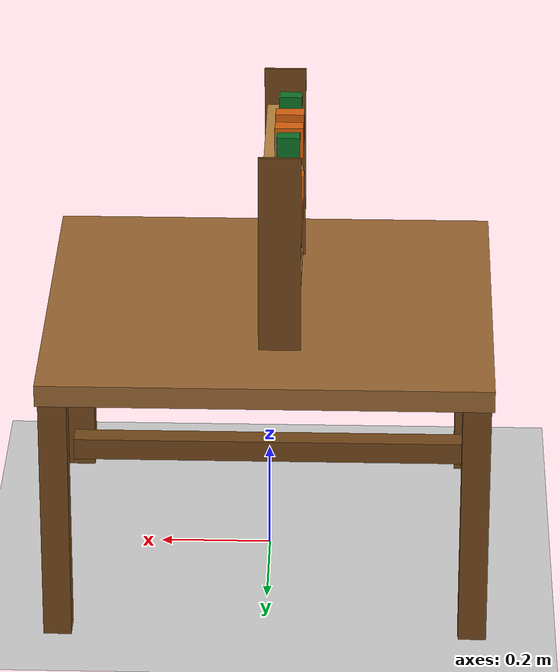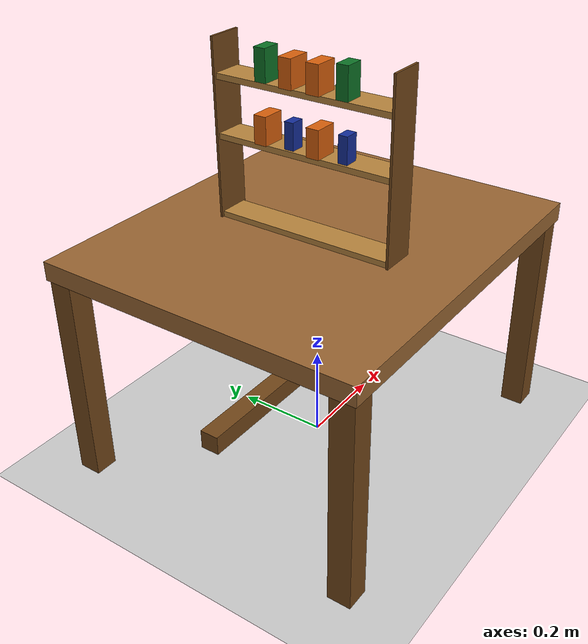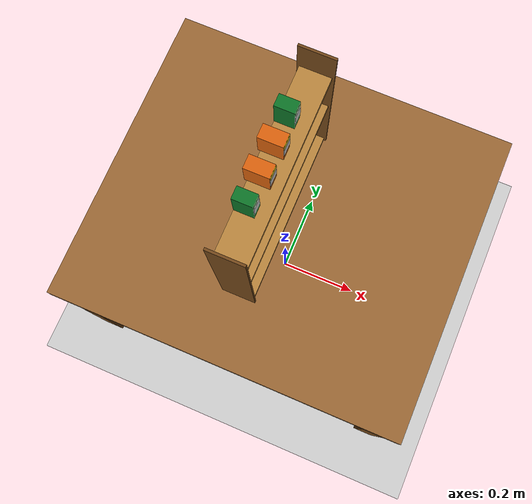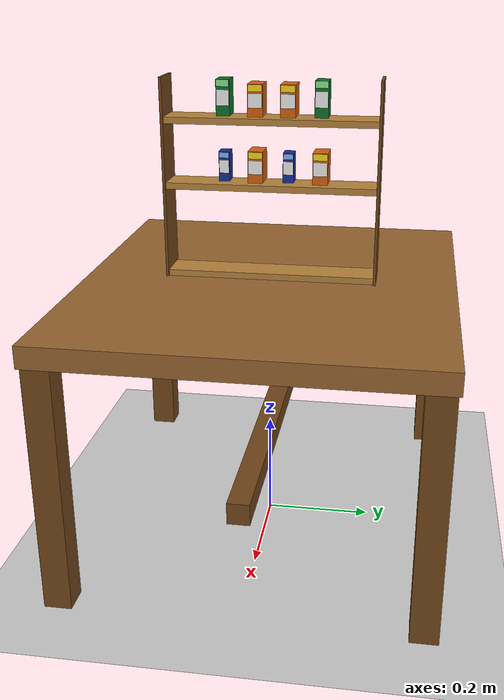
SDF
<?xml version="1.0" ?>
<sdf version="1.7">
  <world name="default">

    <plugin filename="gz-sim-physics-system"           name="gz::sim::systems::Physics"/>
    <plugin filename="gz-sim-user-commands-system"     name="gz::sim::systems::UserCommands"/>
    <plugin filename="gz-sim-scene-broadcaster-system" name="gz::sim::systems::SceneBroadcaster"/>
    <plugin filename="gz-sim-sensors-system"           name="gz::sim::systems::Sensors">
      <render_engine>ogre2</render_engine>
    </plugin>

    <gravity>0.0 0.0 -9.8</gravity>
    <scene>
      <shadows>false</shadows>
      <ambient>0.7 0.7 0.7 1</ambient>
      <background>0.5 0.6 0.7 1</background>
    </scene>

    <include>
      <uri>https://fuel.gazebosim.org/1.0/OpenRobotics/models/Sun</uri>
    </include>
    <include>
      <uri>https://fuel.gazebosim.org/1.0/OpenRobotics/models/Ground Plane</uri>
    </include>

    <!-- Robot work table (unchanged: centred at origin, 0.80 × 0.70 m top) -->
    <include>
      <uri>model://robot_platform</uri>
      <name>robot_platform</name>
      <pose>0 0 0.50 0 0 0</pose>
    </include>

    <!-- Medicine shelf: shifted 22 cm back with robot (front face at x = -0.06 m) -->
    <include>
      <uri>model://medicine_shelf</uri>
      <name>medicine_shelf</name>
      <pose>-0.06 0 0.50 0 0 0</pose>
    </include>

    <include>
      <uri>model://medicine_packet_a</uri>
      <name>med_L1</name>
      <pose>-0.035 -0.09 0.7075 0 0 0</pose>
    </include>
    <include>
      <uri>model://medicine_packet_c</uri>
      <name>med_L2</name>
      <pose>-0.035 -0.03 0.7090 0 0 0</pose>
    </include>
    <include>
      <uri>model://medicine_packet_a</uri>
      <name>med_L3</name>
      <pose>-0.035  0.03 0.7075 0 0 0</pose>
    </include>
    <include>
      <uri>model://medicine_packet_c</uri>
      <name>med_L4</name>
      <pose>-0.035  0.09 0.7090 0 0 0</pose>
    </include>

    <include>
      <uri>model://medicine_packet_b</uri>
      <name>med_U1</name>
      <pose>-0.035 -0.09 0.8325 0 0 0</pose>
    </include>
    <include>
      <uri>model://medicine_packet_c</uri>
      <name>med_U2</name>
      <pose>-0.035 -0.03 0.8290 0 0 0</pose>
    </include>
    <include>
      <uri>model://medicine_packet_c</uri>
      <name>med_U3</name>
      <pose>-0.035  0.03 0.8290 0 0 0</pose>
    </include>
    <include>
      <uri>model://medicine_packet_b</uri>
      <name>med_U4</name>
      <pose>-0.035  0.09 0.8325 0 0 0</pose>
    </include>

  </world>
</sdf>

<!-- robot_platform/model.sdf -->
<sdf version="1.6">
  <model name="robot_platform">
    <static>true</static>
    <link name="link">

      <!-- Table top -->
      <collision name="top_col">
        <pose>0 0 -0.02 0 0 0</pose>
        <geometry><box><size>0.80 0.70 0.04</size></box></geometry>
      </collision>
      <visual name="top_vis">
        <pose>0 0 -0.02 0 0 0</pose>
        <geometry><box><size>0.80 0.70 0.04</size></box></geometry>
        <material>
          <ambient>0.60 0.40 0.20 1</ambient>
          <diffuse>0.60 0.40 0.20 1</diffuse>
          <specular>0.25 0.25 0.25 1</specular>
        </material>
      </visual>

      <!-- Front-left leg -->
      <collision name="leg_fl_col"><pose> 0.37  0.32 -0.27 0 0 0</pose><geometry><box><size>0.05 0.05 0.46</size></box></geometry></collision>
      <visual    name="leg_fl_vis"><pose> 0.37  0.32 -0.27 0 0 0</pose><geometry><box><size>0.05 0.05 0.46</size></box></geometry>
        <material><ambient>0.45 0.28 0.10 1</ambient><diffuse>0.45 0.28 0.10 1</diffuse></material></visual>

      <!-- Front-right leg -->
      <collision name="leg_fr_col"><pose> 0.37 -0.32 -0.27 0 0 0</pose><geometry><box><size>0.05 0.05 0.46</size></box></geometry></collision>
      <visual    name="leg_fr_vis"><pose> 0.37 -0.32 -0.27 0 0 0</pose><geometry><box><size>0.05 0.05 0.46</size></box></geometry>
        <material><ambient>0.45 0.28 0.10 1</ambient><diffuse>0.45 0.28 0.10 1</diffuse></material></visual>

      <!-- Back-left leg -->
      <collision name="leg_bl_col"><pose>-0.37  0.32 -0.27 0 0 0</pose><geometry><box><size>0.05 0.05 0.46</size></box></geometry></collision>
      <visual    name="leg_bl_vis"><pose>-0.37  0.32 -0.27 0 0 0</pose><geometry><box><size>0.05 0.05 0.46</size></box></geometry>
        <material><ambient>0.45 0.28 0.10 1</ambient><diffuse>0.45 0.28 0.10 1</diffuse></material></visual>

      <!-- Back-right leg -->
      <collision name="leg_br_col"><pose>-0.37 -0.32 -0.27 0 0 0</pose><geometry><box><size>0.05 0.05 0.46</size></box></geometry></collision>
      <visual    name="leg_br_vis"><pose>-0.37 -0.32 -0.27 0 0 0</pose><geometry><box><size>0.05 0.05 0.46</size></box></geometry>
        <material><ambient>0.45 0.28 0.10 1</ambient><diffuse>0.45 0.28 0.10 1</diffuse></material></visual>

      <!-- Cross-brace (structural beam under table-top) -->
      <collision name="brace_col"><pose>0 0 -0.30 0 0 0</pose><geometry><box><size>0.72 0.04 0.04</size></box></geometry></collision>
      <visual    name="brace_vis"><pose>0 0 -0.30 0 0 0</pose><geometry><box><size>0.72 0.04 0.04</size></box></geometry>
        <material><ambient>0.45 0.28 0.10 1</ambient><diffuse>0.45 0.28 0.10 1</diffuse></material></visual>

    </link>
  </model>
</sdf>

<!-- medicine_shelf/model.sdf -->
<sdf version="1.6">
  <model name="medicine_shelf">
    <static>true</static>
    <link name="link">

      <!-- Left side wall  (dark walnut) -->
      <collision name="left_col">
        <pose>0.0375 0.1975 0.185 0 0 0</pose>
        <geometry><box><size>0.075 0.005 0.37</size></box></geometry>
      </collision>
      <visual name="left_vis">
        <pose>0.0375 0.1975 0.185 0 0 0</pose>
        <geometry><box><size>0.075 0.005 0.37</size></box></geometry>
        <material>
          <ambient>0.38 0.22 0.08 1</ambient>
          <diffuse>0.45 0.28 0.10 1</diffuse>
          <specular>0.08 0.05 0.02 1</specular>
        </material>
      </visual>

      <!-- Right side wall  (dark walnut) -->
      <collision name="right_col">
        <pose>0.0375 -0.1975 0.185 0 0 0</pose>
        <geometry><box><size>0.075 0.005 0.37</size></box></geometry>
      </collision>
      <visual name="right_vis">
        <pose>0.0375 -0.1975 0.185 0 0 0</pose>
        <geometry><box><size>0.075 0.005 0.37</size></box></geometry>
        <material>
          <ambient>0.38 0.22 0.08 1</ambient>
          <diffuse>0.45 0.28 0.10 1</diffuse>
          <specular>0.08 0.05 0.02 1</specular>
        </material>
      </visual>

      <!-- Bottom base board  (lighter pine) -->
      <collision name="base_col">
        <pose>0.0375 0 0.006 0 0 0</pose>
        <geometry><box><size>0.065 0.39 0.012</size></box></geometry>
      </collision>
      <visual name="base_vis">
        <pose>0.0375 0 0.006 0 0 0</pose>
        <geometry><box><size>0.065 0.39 0.012</size></box></geometry>
        <material>
          <ambient>0.62 0.42 0.18 1</ambient>
          <diffuse>0.72 0.52 0.24 1</diffuse>
          <specular>0.08 0.06 0.03 1</specular>
        </material>
      </visual>

      <!-- Lower shelf board  (top at local z = 0.18)  lighter pine -->
      <collision name="shelf_low_col">
        <pose>0.0375 0 0.174 0 0 0</pose>
        <geometry><box><size>0.065 0.39 0.012</size></box></geometry>
      </collision>
      <visual name="shelf_low_vis">
        <pose>0.0375 0 0.174 0 0 0</pose>
        <geometry><box><size>0.065 0.39 0.012</size></box></geometry>
        <material>
          <ambient>0.62 0.42 0.18 1</ambient>
          <diffuse>0.72 0.52 0.24 1</diffuse>
          <specular>0.08 0.06 0.03 1</specular>
        </material>
      </visual>

      <!-- Upper shelf board  (top at local z = 0.30)  lighter pine -->
      <collision name="shelf_top_col">
        <pose>0.0375 0 0.294 0 0 0</pose>
        <geometry><box><size>0.065 0.39 0.012</size></box></geometry>
      </collision>
      <visual name="shelf_top_vis">
        <pose>0.0375 0 0.294 0 0 0</pose>
        <geometry><box><size>0.065 0.39 0.012</size></box></geometry>
        <material>
          <ambient>0.62 0.42 0.18 1</ambient>
          <diffuse>0.72 0.52 0.24 1</diffuse>
          <specular>0.08 0.06 0.03 1</specular>
        </material>
      </visual>

    </link>
  </model>
</sdf>

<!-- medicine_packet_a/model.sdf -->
<sdf version="1.6">
  <!--
    Blue tablet box  -  SMALL  0.030(x) x 0.020(y) x 0.055(z) m
    y = 20 mm  ->  well within ~30 mm gripper opening
    Mass 35 g
  -->
  <model name="medicine_packet_a">
    <static>false</static>
    <link name="link">
      <inertial>
        <mass>0.035</mass>
        <inertia>
          <ixx>0.000010</ixx><ixy>0</ixy><ixz>0</ixz>
          <iyy>0.000011</iyy><iyz>0</iyz>
          <izz>0.0000038</izz>
        </inertia>
      </inertial>
      <collision name="col">
        <geometry><box><size>0.030 0.020 0.055</size></box></geometry>
        <surface><friction><ode><mu>0.9</mu><mu2>0.9</mu2></ode></friction></surface>
      </collision>
      <!-- Main body - dark blue -->
      <visual name="body">
        <geometry><box><size>0.030 0.020 0.055</size></box></geometry>
        <material>
          <ambient>0.08 0.18 0.60 1</ambient>
          <diffuse>0.08 0.18 0.60 1</diffuse>
          <specular>0.2 0.2 0.35 1</specular>
        </material>
      </visual>
      <!-- White label band -->
      <visual name="label">
        <pose>0.0155 0 0 0 0 0</pose>
        <geometry><box><size>0.001 0.018 0.024</size></box></geometry>
        <material><ambient>0.95 0.95 0.95 1</ambient><diffuse>0.95 0.95 0.95 1</diffuse></material>
      </visual>
      <!-- Light-blue top stripe -->
      <visual name="stripe_top">
        <pose>0.0155 0 0.021 0 0 0</pose>
        <geometry><box><size>0.001 0.018 0.010</size></box></geometry>
        <material><ambient>0.50 0.70 1.0 1</ambient><diffuse>0.50 0.70 1.0 1</diffuse></material>
      </visual>
    </link>
  </model>
</sdf>

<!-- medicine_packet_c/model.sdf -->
<sdf version="1.6">
  <!--
    Orange vitamin box  -  WIDE & SHALLOW  0.050(x) x 0.028(y) x 0.058(z) m
    y = 28 mm  ->  just within ~30 mm gripper opening
    Mass 55 g
  -->
  <model name="medicine_packet_c">
    <static>false</static>
    <link name="link">
      <inertial>
        <mass>0.055</mass>
        <inertia>
          <ixx>0.000019</ixx><ixy>0</ixy><ixz>0</ixz>
          <iyy>0.000027</iyy><iyz>0</iyz>
          <izz>0.000015</izz>
        </inertia>
      </inertial>
      <collision name="col">
        <geometry><box><size>0.050 0.028 0.058</size></box></geometry>
        <surface><friction><ode><mu>0.9</mu><mu2>0.9</mu2></ode></friction></surface>
      </collision>
      <!-- Main body - deep orange -->
      <visual name="body">
        <geometry><box><size>0.050 0.028 0.058</size></box></geometry>
        <material>
          <ambient>0.85 0.38 0.05 1</ambient>
          <diffuse>0.85 0.38 0.05 1</diffuse>
          <specular>0.25 0.15 0.05 1</specular>
        </material>
      </visual>
      <!-- White label band -->
      <visual name="label">
        <pose>0.0255 0 0 0 0 0</pose>
        <geometry><box><size>0.001 0.026 0.025</size></box></geometry>
        <material><ambient>0.95 0.95 0.95 1</ambient><diffuse>0.95 0.95 0.95 1</diffuse></material>
      </visual>
      <!-- Yellow top stripe -->
      <visual name="stripe_top">
        <pose>0.0255 0 0.022 0 0 0</pose>
        <geometry><box><size>0.001 0.026 0.012</size></box></geometry>
        <material><ambient>1.0 0.85 0.10 1</ambient><diffuse>1.0 0.85 0.10 1</diffuse></material>
      </visual>
    </link>
  </model>
</sdf>

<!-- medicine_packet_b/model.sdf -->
<sdf version="1.6">
  <!--
    Green antibiotic box  -  MEDIUM-TALL  0.040(x) x 0.025(y) x 0.065(z) m
    y = 25 mm  ->  within ~30 mm gripper opening
    Mass 45 g
  -->
  <model name="medicine_packet_b">
    <static>false</static>
    <link name="link">
      <inertial>
        <mass>0.045</mass>
        <inertia>
          <ixx>0.000018</ixx><ixy>0</ixy><ixz>0</ixz>
          <iyy>0.000022</iyy><iyz>0</iyz>
          <izz>0.0000083</izz>
        </inertia>
      </inertial>
      <collision name="col">
        <geometry><box><size>0.040 0.025 0.065</size></box></geometry>
        <surface><friction><ode><mu>0.9</mu><mu2>0.9</mu2></ode></friction></surface>
      </collision>
      <!-- Main body - forest green -->
      <visual name="body">
        <geometry><box><size>0.040 0.025 0.065</size></box></geometry>
        <material>
          <ambient>0.05 0.45 0.15 1</ambient>
          <diffuse>0.05 0.45 0.15 1</diffuse>
          <specular>0.15 0.25 0.15 1</specular>
        </material>
      </visual>
      <!-- White label band -->
      <visual name="label">
        <pose>0.0205 0 0 0 0 0</pose>
        <geometry><box><size>0.001 0.023 0.028</size></box></geometry>
        <material><ambient>0.95 0.95 0.95 1</ambient><diffuse>0.95 0.95 0.95 1</diffuse></material>
      </visual>
      <!-- Light-green top stripe -->
      <visual name="stripe_top">
        <pose>0.0205 0 0.026 0 0 0</pose>
        <geometry><box><size>0.001 0.023 0.012</size></box></geometry>
        <material><ambient>0.55 0.90 0.55 1</ambient><diffuse>0.55 0.90 0.55 1</diffuse></material>
      </visual>
    </link>
  </model>
</sdf>
